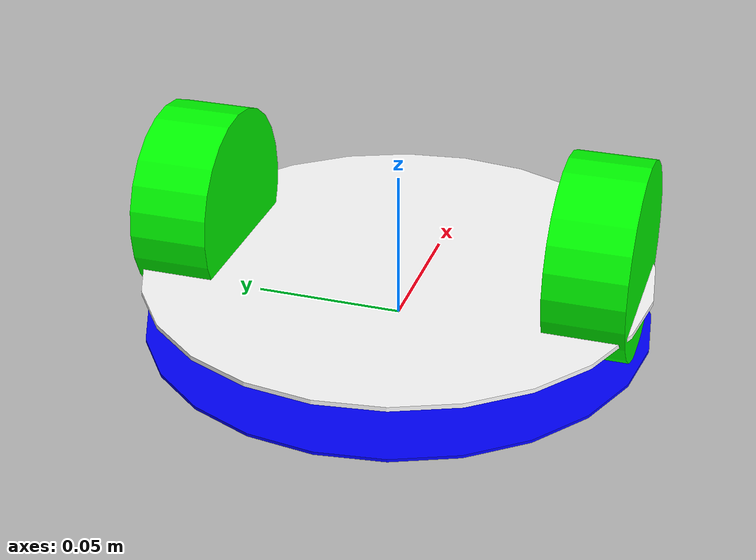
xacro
<?xml version="1.0" encoding="utf-8"?>
<!--SPDX-License-Identifier: Apache-2.0-->
<robot name="mikrik"
	xmlns:xacro="http://www.ros.org/wiki/xacro">
	<xacro:property name="clearance" value="0.018" />
	<xacro:property name="wheel_radius" value="0.0325"/>
	<xacro:property name="wheel_separation" value="0.128"/>
	<xacro:property name="wheel_width" value="0.026"/>
	<xacro:property name="PI" value="3.1415926"/>
	<!-- Matherials -->
	<xacro:include filename="$(find mikrik_description)/urdf/mikrik_materials.xacro" />
	<!-- mikrik_base -->
	<link name="mikrik_base">
		<visual>
			<origin xyz="0 0 0" rpy="0 0 0" />
			<geometry>
				<cylinder length="0.0015" radius="0.085"/>
			</geometry>
			<material name="White" />
		</visual>
		<collision>
			<origin xyz="0 0 0" rpy="0 0 0" />
			<geometry>
				<cylinder length="0.001" radius="0.085"/>
			</geometry>
		</collision>
	</link>
	<!-- base_link -->
	<link name="base_link">
		<visual>
			<origin xyz="0 0 0" rpy="0 0 0" />
			<geometry>
				<sphere radius="0.001" />
			</geometry>
		</visual>
	</link>
	<joint name="base_link_to_mikrik_base" type="fixed">
		<origin xyz="0 0 0" rpy="0 0 0" />
		<parent link="base_link" />
		<child link="mikrik_base" />
	</joint>
	<!-- base_footprint -->
	<link name="base_footprint">
	<visual>
		<origin xyz="0 0 0" rpy="0 0 0" />
		<geometry>
			<cylinder length="0.001" radius="0.085" />
		</geometry>
		<material name="Blue" />
	</visual>
	</link>
	<joint name="base_footprint_to_base_link" type="fixed">
		<origin xyz="0 0 ${clearance}" rpy="0 0 0" />
		<parent link="base_footprint" />
		<child link="base_link" />
	</joint>
    <!-- Wheels -->
	<xacro:include filename="$(find mikrik_description)/urdf/mikrik_left_wheel.xacro" />
	<xacro:include filename="$(find mikrik_description)/urdf/mikrik_right_wheel.xacro" />
</robot>

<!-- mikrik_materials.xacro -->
<!--SPDX-License-Identifier: Apache-2.0-->
<robot
	xmlns:xacro="http://www.ros.org/wiki/xacro">
	<material name="Green">
		<color rgba="0.0 1.0 0.0 1.0"/>
	</material>
	<material name="Blue">
		<color rgba="0.0 0.0 1.0 1.0"/>
	</material>
	<material name="Red">
		<color rgba="1.0 0.0 0.0 1.0"/>
	</material>
	<material name="White">
		<color rgba="1.0 1.0 1.0 1.0"/>
	</material>
	<material name="Yellow">
		<color rgba="1.0 1.0 0.0 1.0"/>
	</material>
</robot>

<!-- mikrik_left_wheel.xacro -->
<!--SPDX-License-Identifier: Apache-2.0-->
<robot name="mikrik"
	xmlns:xacro="http://www.ros.org/wiki/xacro">
	<!-- left_wheel_geometry -->
	<link name="left_wheel">
		<visual>
			<origin xyz="0 0 0" rpy="${PI/2} 0 0" />
			<geometry>
				<cylinder length="${wheel_width}" radius="${wheel_radius}"/>
			</geometry>
			<material name="Green" />
		</visual>
		<collision>
			<origin xyz="0 0 0" rpy="${PI/2} 0 0" />
			<geometry>
				<cylinder length="${wheel_width}" radius="${wheel_radius}"/>
			</geometry>
		</collision>
	</link>
	<joint name="left_wheel_to_base" type="continuous">
		<origin xyz="0 0.068 0.0145" rpy="0 0 0" />
		<parent link="mikrik_base" />
		<child link="left_wheel" />
		<axis xyz="0 1 0" />
	</joint>
</robot>

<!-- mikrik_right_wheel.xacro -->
<!--SPDX-License-Identifier: Apache-2.0-->
<robot name="mikrik"
	xmlns:xacro="http://www.ros.org/wiki/xacro">
	<!-- right_wheel_geometry -->
	<link name="right_wheel">
		<visual>
			<origin xyz="0 0 0" rpy="${PI/2} 0 0" />
			<geometry>
				<cylinder length="${wheel_width}" radius="${wheel_radius}"/>
			</geometry>
			<material name="Green" />
		</visual>
		<collision>
			<origin xyz="0 0 0" rpy="${PI/2} 0 0" />
			<geometry>
				<cylinder length="${wheel_width}" radius="${wheel_radius}"/>
			</geometry>
		</collision>
	</link>
	<joint name="right_wheel_to_base" type="continuous">
		<origin xyz="0 -0.068 0.0145" rpy="0 0 0" />
		<parent link="mikrik_base" />
		<child link="right_wheel" />
		<axis xyz="0 1 0" />
	</joint>
</robot>
